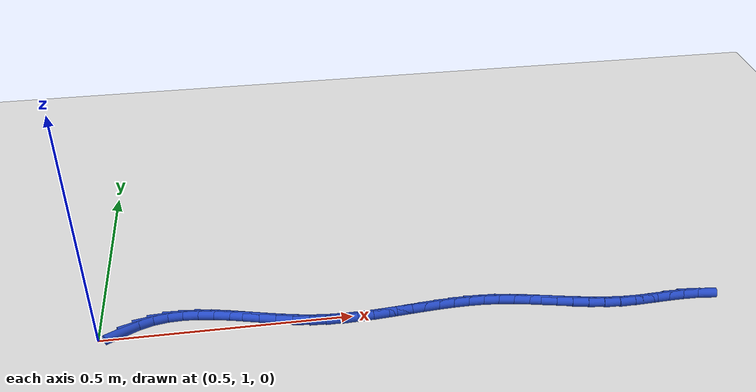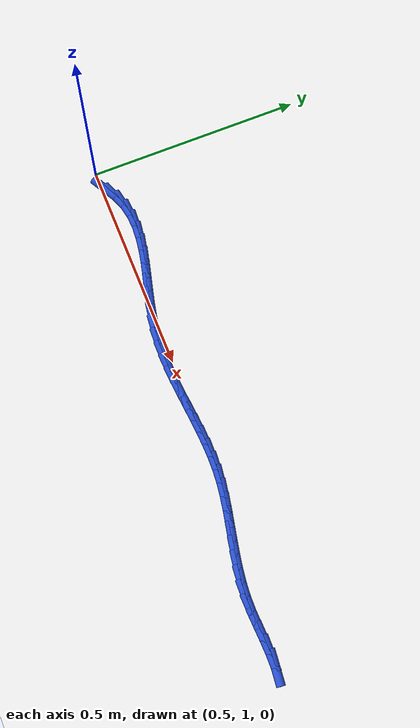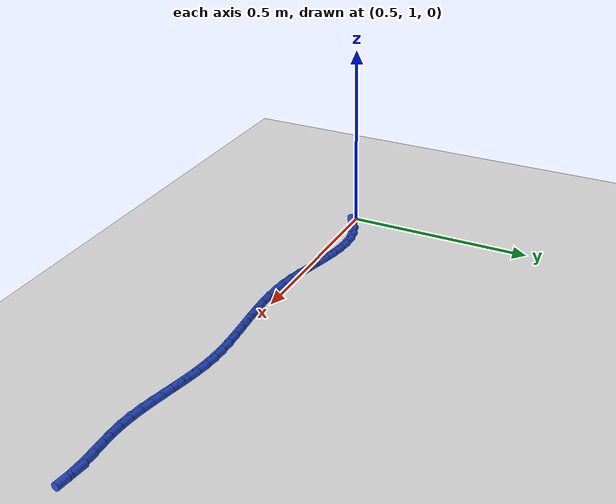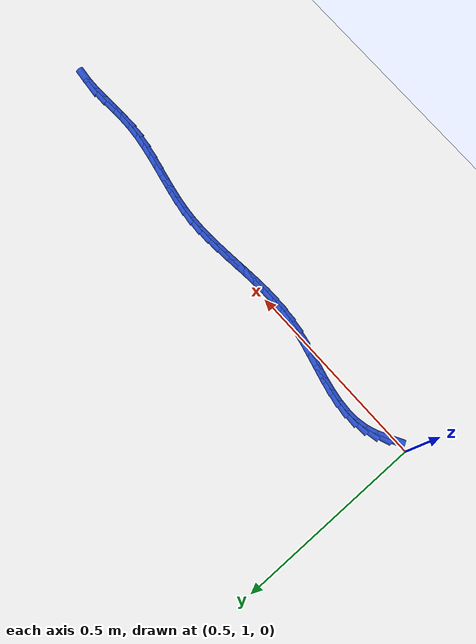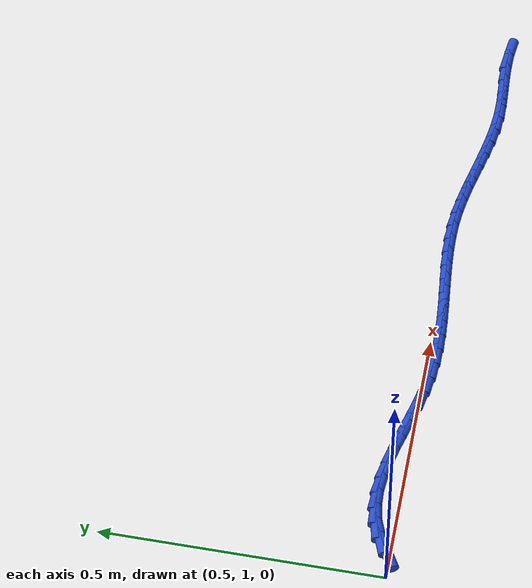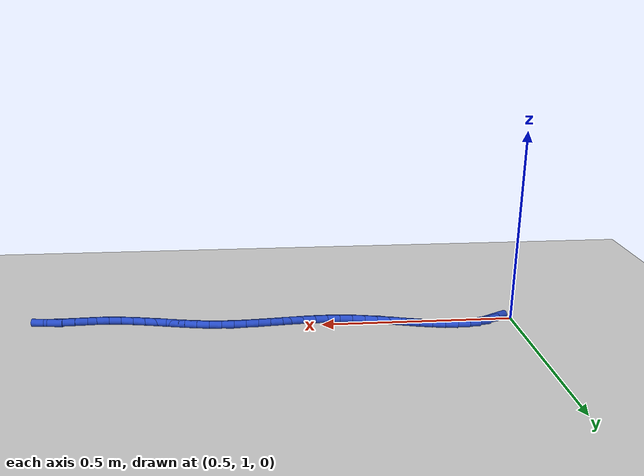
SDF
<sdf version="1.6">
 <world name="default">
  <model name="ground_plane">
   <static>1</static>
   <link name="link">
    <collision name="collision">
     <geometry><plane><normal>0 0 1</normal><size>100 100</size></plane></geometry>
     <surface><friction><ode><mu>100</mu><mu2>50</mu2></ode></friction></surface>
    </collision>
    <visual name="visual">
     <cast_shadows>0</cast_shadows>
     <geometry><plane><normal>0 0 1</normal><size>100 100</size></plane></geometry>
     <material>
      <script><uri>file://media/materials/scripts/gazebo.material</uri><name>Gazebo/WhiteGlow</name></script>
     </material>
    </visual>
   </link>
  </model>
  <model name="line">
   <link name="link_37">
    <pose>0.5494593843570381 1.0087941891152745 0.01 0 1.57 0.5000352109031894</pose>
    <collision name="collision">
     <geometry><cylinder><radius>0.01</radius><length>0.08</length></cylinder></geometry>
    </collision>
    <visual name="visual">
     <material>
      <script><name>Gazebo/Blue</name><uri>file://media/materials/scripts/gazebo.material</uri></script>
     </material>
     <geometry><cylinder><radius>0.01</radius><length>0.08</length></cylinder></geometry>
    </visual>
   </link>
   <link name="link_38">
    <pose>0.5763257783304249 1.0234725953770047 0.01 0 1.57 0.35312439117154304</pose>
    <collision name="collision">
     <geometry><cylinder><radius>0.01</radius><length>0.08</length></cylinder></geometry>
    </collision>
    <visual name="visual">
     <material>
      <script><name>Gazebo/Blue</name><uri>file://media/materials/scripts/gazebo.material</uri></script>
     </material>
     <geometry><cylinder><radius>0.01</radius><length>0.08</length></cylinder></geometry>
    </visual>
   </link>
   <link name="link_39">
    <pose>0.6042350538172319 1.0337592078128153 0.01 0 1.57 0.18876865755380007</pose>
    <collision name="collision">
     <geometry><cylinder><radius>0.01</radius><length>0.08</length></cylinder></geometry>
    </collision>
    <visual name="visual">
     <material>
      <script><name>Gazebo/Blue</name><uri>file://media/materials/scripts/gazebo.material</uri></script>
     </material>
     <geometry><cylinder><radius>0.01</radius><length>0.08</length></cylinder></geometry>
    </visual>
   </link>
   <link name="link_40">
    <pose>0.633154343229614 1.0392840429426653 0.01 0 1.57 0.04550295876543548</pose>
    <collision name="collision">
     <geometry><cylinder><radius>0.01</radius><length>0.08</length></cylinder></geometry>
    </collision>
    <visual name="visual">
     <material>
      <script><name>Gazebo/Blue</name><uri>file://media/materials/scripts/gazebo.material</uri></script>
     </material>
     <geometry><cylinder><radius>0.01</radius><length>0.08</length></cylinder></geometry>
    </visual>
   </link>
   <link name="link_41">
    <pose>0.6629722235899185 1.0406417819274516 0.01 0 1.57 -0.06756325267002852</pose>
    <collision name="collision">
     <geometry><cylinder><radius>0.01</radius><length>0.08</length></cylinder></geometry>
    </collision>
    <visual name="visual">
     <material>
      <script><name>Gazebo/Blue</name><uri>file://media/materials/scripts/gazebo.material</uri></script>
     </material>
     <geometry><cylinder><radius>0.01</radius><length>0.08</length></cylinder></geometry>
    </visual>
   </link>
   <link name="link_42">
    <pose>0.6935655013087647 1.0385716497075008 0.01 0 1.57 -0.1511414407113176</pose>
    <collision name="collision">
     <geometry><cylinder><radius>0.01</radius><length>0.08</length></cylinder></geometry>
    </collision>
    <visual name="visual">
     <material>
      <script><name>Gazebo/Blue</name><uri>file://media/materials/scripts/gazebo.material</uri></script>
     </material>
     <geometry><cylinder><radius>0.01</radius><length>0.08</length></cylinder></geometry>
    </visual>
   </link>
   <link name="link_43">
    <pose>0.7248109827967707 1.0338128712231396 0.01 0 1.57 -0.20806371625510015</pose>
    <collision name="collision">
     <geometry><cylinder><radius>0.01</radius><length>0.08</length></cylinder></geometry>
    </collision>
    <visual name="visual">
     <material>
      <script><name>Gazebo/Blue</name><uri>file://media/materials/scripts/gazebo.material</uri></script>
     </material>
     <geometry><cylinder><radius>0.01</radius><length>0.08</length></cylinder></geometry>
    </visual>
   </link>
   <link name="link_44">
    <pose>0.7565854744645548 1.0271046714146934 0.01 0 1.57 -0.2412702136139695</pose>
    <collision name="collision">
     <geometry><cylinder><radius>0.01</radius><length>0.08</length></cylinder></geometry>
    </collision>
    <visual name="visual">
     <material>
      <script><name>Gazebo/Blue</name><uri>file://media/materials/scripts/gazebo.material</uri></script>
     </material>
     <geometry><cylinder><radius>0.01</radius><length>0.08</length></cylinder></geometry>
    </visual>
   </link>
   <link name="link_45">
    <pose>0.7887657827227358 1.0191862752224894 0.01 0 1.57 -0.2528961093170439</pose>
    <collision name="collision">
     <geometry><cylinder><radius>0.01</radius><length>0.08</length></cylinder></geometry>
    </collision>
    <visual name="visual">
     <material>
      <script><name>Gazebo/Blue</name><uri>file://media/materials/scripts/gazebo.material</uri></script>
     </material>
     <geometry><cylinder><radius>0.01</radius><length>0.08</length></cylinder></geometry>
    </visual>
   </link>
   <link name="link_46">
    <pose>0.8212287139819319 1.0107969075868535 0.01 0 1.57 -0.24398376004355413</pose>
    <collision name="collision">
     <geometry><cylinder><radius>0.01</radius><length>0.08</length></cylinder></geometry>
    </collision>
    <visual name="visual">
     <material>
      <script><name>Gazebo/Blue</name><uri>file://media/materials/scripts/gazebo.material</uri></script>
     </material>
     <geometry><cylinder><radius>0.01</radius><length>0.08</length></cylinder></geometry>
    </visual>
   </link>
   <link name="link_47">
    <pose>0.8538510746527614 1.0026757934481116 0.01 0 1.57 -0.2144682495640532</pose>
    <collision name="collision">
     <geometry><cylinder><radius>0.01</radius><length>0.08</length></cylinder></geometry>
    </collision>
    <visual name="visual">
     <material>
      <script><name>Gazebo/Blue</name><uri>file://media/materials/scripts/gazebo.material</uri></script>
     </material>
     <geometry><cylinder><radius>0.01</radius><length>0.08</length></cylinder></geometry>
    </visual>
   </link>
   <link name="link_48">
    <pose>0.8865096711458433 0.9955621577465913 0.01 0 1.57 -0.16332632293559765</pose>
    <collision name="collision">
     <geometry><cylinder><radius>0.01</radius><length>0.08</length></cylinder></geometry>
    </collision>
    <visual name="visual">
     <material>
      <script><name>Gazebo/Blue</name><uri>file://media/materials/scripts/gazebo.material</uri></script>
     </material>
     <geometry><cylinder><radius>0.01</radius><length>0.08</length></cylinder></geometry>
    </visual>
   </link>
   <link name="link_49">
    <pose>0.9190813948219791 0.9901945247162948 0.01 0 1.57 -0.0974655832915246</pose>
    <collision name="collision">
     <geometry><cylinder><radius>0.01</radius><length>0.08</length></cylinder></geometry>
    </collision>
    <visual name="visual">
     <material>
      <script><name>Gazebo/Blue</name><uri>file://media/materials/scripts/gazebo.material</uri></script>
     </material>
     <geometry><cylinder><radius>0.01</radius><length>0.08</length></cylinder></geometry>
    </visual>
   </link>
   <link name="link_50">
    <pose>0.9514776220580944 0.9870269710736745 0.01 0 1.57 -0.03825388709595281</pose>
    <collision name="collision">
     <geometry><cylinder><radius>0.01</radius><length>0.08</length></cylinder></geometry>
    </collision>
    <visual name="visual">
     <material>
      <script><name>Gazebo/Blue</name><uri>file://media/materials/scripts/gazebo.material</uri></script>
     </material>
     <geometry><cylinder><radius>0.01</radius><length>0.08</length></cylinder></geometry>
    </visual>
   </link>
   <link name="link_51">
    <pose>0.9836969845238246 0.9857938536627369 0.01 0 1.57 0.010094144254766724</pose>
    <collision name="collision">
     <geometry><cylinder><radius>0.01</radius><length>0.08</length></cylinder></geometry>
    </collision>
    <visual name="visual">
     <material>
      <script><name>Gazebo/Blue</name><uri>file://media/materials/scripts/gazebo.material</uri></script>
     </material>
     <geometry><cylinder><radius>0.01</radius><length>0.08</length></cylinder></geometry>
    </visual>
   </link>
   <link name="link_52">
    <pose>1.015751704305465 0.9861174296182401 0.01 0 1.57 0.0470629705185265</pose>
    <collision name="collision">
     <geometry><cylinder><radius>0.01</radius><length>0.08</length></cylinder></geometry>
    </collision>
    <visual name="visual">
     <material>
      <script><name>Gazebo/Blue</name><uri>file://media/materials/scripts/gazebo.material</uri></script>
     </material>
     <geometry><cylinder><radius>0.01</radius><length>0.08</length></cylinder></geometry>
    </visual>
   </link>
   <link name="link_53">
    <pose>1.0476540034893085 0.9876199560749416 0.01 0 1.57 0.0724041222366056</pose>
    <collision name="collision">
     <geometry><cylinder><radius>0.01</radius><length>0.08</length></cylinder></geometry>
    </collision>
    <visual name="visual">
     <material>
      <script><name>Gazebo/Blue</name><uri>file://media/materials/scripts/gazebo.material</uri></script>
     </material>
     <geometry><cylinder><radius>0.01</radius><length>0.08</length></cylinder></geometry>
    </visual>
   </link>
   <link name="link_54">
    <pose>1.0794161041616501 0.9899236901675994 0.01 0 1.57 0.08599803106822794</pose>
    <collision name="collision">
     <geometry><cylinder><radius>0.01</radius><length>0.08</length></cylinder></geometry>
    </collision>
    <visual name="visual">
     <material>
      <script><name>Gazebo/Blue</name><uri>file://media/materials/scripts/gazebo.material</uri></script>
     </material>
     <geometry><cylinder><radius>0.01</radius><length>0.08</length></cylinder></geometry>
    </visual>
   </link>
   <link name="link_55">
    <pose>1.1110502284087842 0.9926508890309718 0.01 0 1.57 0.08775198644588765</pose>
    <collision name="collision">
     <geometry><cylinder><radius>0.01</radius><length>0.08</length></cylinder></geometry>
    </collision>
    <visual name="visual">
     <material>
      <script><name>Gazebo/Blue</name><uri>file://media/materials/scripts/gazebo.material</uri></script>
     </material>
     <geometry><cylinder><radius>0.01</radius><length>0.08</length></cylinder></geometry>
    </visual>
   </link>
   <link name="link_56">
    <pose>1.142568598317004 0.9954238097998159 0.01 0 1.57 0.07754315158908005</pose>
    <collision name="collision">
     <geometry><cylinder><radius>0.01</radius><length>0.08</length></cylinder></geometry>
    </collision>
    <visual name="visual">
     <material>
      <script><name>Gazebo/Blue</name><uri>file://media/materials/scripts/gazebo.material</uri></script>
     </material>
     <geometry><cylinder><radius>0.01</radius><length>0.08</length></cylinder></geometry>
    </visual>
   </link>
   <link name="link_57">
    <pose>1.1739834359726047 0.9978647096088904 0.01 0 1.57 0.05521015154342319</pose>
    <collision name="collision">
     <geometry><cylinder><radius>0.01</radius><length>0.08</length></cylinder></geometry>
    </collision>
    <visual name="visual">
     <material>
      <script><name>Gazebo/Blue</name><uri>file://media/materials/scripts/gazebo.material</uri></script>
     </material>
     <geometry><cylinder><radius>0.01</radius><length>0.08</length></cylinder></geometry>
    </visual>
   </link>
   <link name="link_58">
    <pose>1.2053069634618794 0.9995958455929524 0.01 0 1.57 0.020596889794850914</pose>
    <collision name="collision">
     <geometry><cylinder><radius>0.01</radius><length>0.08</length></cylinder></geometry>
    </collision>
    <visual name="visual">
     <material>
      <script><name>Gazebo/Blue</name><uri>file://media/materials/scripts/gazebo.material</uri></script>
     </material>
     <geometry><cylinder><radius>0.01</radius><length>0.08</length></cylinder></geometry>
    </visual>
   </link>
   <link name="link_59">
    <pose>1.2365514028711233 1.0002394748867602 0.01 0 1.57 -0.02634682729325498</pose>
    <collision name="collision">
     <geometry><cylinder><radius>0.01</radius><length>0.08</length></cylinder></geometry>
    </collision>
    <visual name="visual">
     <material>
      <script><name>Gazebo/Blue</name><uri>file://media/materials/scripts/gazebo.material</uri></script>
     </material>
     <geometry><cylinder><radius>0.01</radius><length>0.08</length></cylinder></geometry>
    </visual>
   </link>
   <link name="link_60">
    <pose>1.2677289762866302 0.999417854625072 0.01 0 1.57 -0.0848402004805474</pose>
    <collision name="collision">
     <geometry><cylinder><radius>0.01</radius><length>0.08</length></cylinder></geometry>
    </collision>
    <visual name="visual">
     <material>
      <script><name>Gazebo/Blue</name><uri>file://media/materials/scripts/gazebo.material</uri></script>
     </material>
     <geometry><cylinder><radius>0.01</radius><length>0.08</length></cylinder></geometry>
    </visual>
   </link>
   <link name="link_61">
    <pose>1.2988522224955503 0.9967709985615213 0.01 0 1.57 -0.14102467265274782</pose>
    <collision name="collision">
     <geometry><cylinder><radius>0.01</radius><length>0.08</length></cylinder></geometry>
    </collision>
    <visual name="visual">
     <material>
      <script><name>Gazebo/Blue</name><uri>file://media/materials/scripts/gazebo.material</uri></script>
     </material>
     <geometry><cylinder><radius>0.01</radius><length>0.08</length></cylinder></geometry>
    </visual>
   </link>
   <link name="link_62">
    <pose>1.329941144060369 0.9923573955230051 0.01 0 1.57 -0.18129847067194396</pose>
    <collision name="collision">
     <geometry><cylinder><radius>0.01</radius><length>0.08</length></cylinder></geometry>
    </collision>
    <visual name="visual">
     <material>
      <script><name>Gazebo/Blue</name><uri>file://media/materials/scripts/gazebo.material</uri></script>
     </material>
     <geometry><cylinder><radius>0.01</radius><length>0.08</length></cylinder></geometry>
    </visual>
   </link>
   <link name="link_63">
    <pose>1.3610233085133334 0.9866596831261163 0.01 0 1.57 -0.2054088264379113</pose>
    <collision name="collision">
     <geometry><cylinder><radius>0.01</radius><length>0.08</length></cylinder></geometry>
    </collision>
    <visual name="visual">
     <material>
      <script><name>Gazebo/Blue</name><uri>file://media/materials/scripts/gazebo.material</uri></script>
     </material>
     <geometry><cylinder><radius>0.01</radius><length>0.08</length></cylinder></geometry>
    </visual>
   </link>
   <link name="link_64">
    <pose>1.3921266203275802 0.9801793904141248 0.01 0 1.57 -0.21372628012579523</pose>
    <collision name="collision">
     <geometry><cylinder><radius>0.01</radius><length>0.08</length></cylinder></geometry>
    </collision>
    <visual name="visual">
     <material>
      <script><name>Gazebo/Blue</name><uri>file://media/materials/scripts/gazebo.material</uri></script>
     </material>
     <geometry><cylinder><radius>0.01</radius><length>0.08</length></cylinder></geometry>
    </visual>
   </link>
   <link name="link_65">
    <pose>1.423278983976248 0.9734180464303004 0.01 0 1.57 -0.20646184336720474</pose>
    <collision name="collision">
     <geometry><cylinder><radius>0.01</radius><length>0.08</length></cylinder></geometry>
    </collision>
    <visual name="visual">
     <material>
      <script><name>Gazebo/Blue</name><uri>file://media/materials/scripts/gazebo.material</uri></script>
     </material>
     <geometry><cylinder><radius>0.01</radius><length>0.08</length></cylinder></geometry>
    </visual>
   </link>
   <link name="link_66">
    <pose>1.4545083039324764 0.9668771802179132 0.01 0 1.57 -0.1836116644949007</pose>
    <collision name="collision">
     <geometry><cylinder><radius>0.01</radius><length>0.08</length></cylinder></geometry>
    </collision>
    <visual name="visual">
     <material>
      <script><name>Gazebo/Blue</name><uri>file://media/materials/scripts/gazebo.material</uri></script>
     </material>
     <geometry><cylinder><radius>0.01</radius><length>0.08</length></cylinder></geometry>
    </visual>
   </link>
   <link name="link_67">
    <pose>1.485842484669402 0.9610583208202332 0.01 0 1.57 -0.14501145572093538</pose>
    <collision name="collision">
     <geometry><cylinder><radius>0.01</radius><length>0.08</length></cylinder></geometry>
    </collision>
    <visual name="visual">
     <material>
      <script><name>Gazebo/Blue</name><uri>file://media/materials/scripts/gazebo.material</uri></script>
     </material>
     <geometry><cylinder><radius>0.01</radius><length>0.08</length></cylinder></geometry>
    </visual>
   </link>
   <link name="link_68">
    <pose>1.5173094306601644 0.9564629972805305 0.01 0 1.57 -0.0905037448146181</pose>
    <collision name="collision">
     <geometry><cylinder><radius>0.01</radius><length>0.08</length></cylinder></geometry>
    </collision>
    <visual name="visual">
     <material>
      <script><name>Gazebo/Blue</name><uri>file://media/materials/scripts/gazebo.material</uri></script>
     </material>
     <geometry><cylinder><radius>0.01</radius><length>0.08</length></cylinder></geometry>
    </visual>
   </link>
   <link name="link_69">
    <pose>1.5489370463779009 0.9535927386420745 0.01 0 1.57 -0.023188830017155403</pose>
    <collision name="collision">
     <geometry><cylinder><radius>0.01</radius><length>0.08</length></cylinder></geometry>
    </collision>
    <visual name="visual">
     <material>
      <script><name>Gazebo/Blue</name><uri>file://media/materials/scripts/gazebo.material</uri></script>
     </material>
     <geometry><cylinder><radius>0.01</radius><length>0.08</length></cylinder></geometry>
    </visual>
   </link>
   <link name="link_70">
    <pose>1.5807444389985381 0.9528550301892503 0.01 0 1.57 0.027182631395976594</pose>
    <collision name="collision">
     <geometry><cylinder><radius>0.01</radius><length>0.08</length></cylinder></geometry>
    </collision>
    <visual name="visual">
     <material>
      <script><name>Gazebo/Blue</name><uri>file://media/materials/scripts/gazebo.material</uri></script>
     </material>
     <geometry><cylinder><radius>0.01</radius><length>0.08</length></cylinder></geometry>
    </visual>
   </link>
   <link name="link_71">
    <pose>1.612663300531228 0.9537228825981346 0.01 0 1.57 0.04419482162252456</pose>
    <collision name="collision">
     <geometry><cylinder><radius>0.01</radius><length>0.08</length></cylinder></geometry>
    </collision>
    <visual name="visual">
     <material>
      <script><name>Gazebo/Blue</name><uri>file://media/materials/scripts/gazebo.material</uri></script>
     </material>
     <geometry><cylinder><radius>0.01</radius><length>0.08</length></cylinder></geometry>
    </visual>
   </link>
   <link name="link_72">
    <pose>1.6445752614434126 0.9551341449554698 0.01 0 1.57 0.027873031226642954</pose>
    <collision name="collision">
     <geometry><cylinder><radius>0.01</radius><length>0.08</length></cylinder></geometry>
    </collision>
    <visual name="visual">
     <material>
      <script><name>Gazebo/Blue</name><uri>file://media/materials/scripts/gazebo.material</uri></script>
     </material>
     <geometry><cylinder><radius>0.01</radius><length>0.08</length></cylinder></geometry>
    </visual>
   </link>
   <link name="link_73">
    <pose>1.6763613612872674 0.9560203494200283 0.01 0 1.57 -0.02242149887177784</pose>
    <collision name="collision">
     <geometry><cylinder><radius>0.01</radius><length>0.08</length></cylinder></geometry>
    </collision>
    <visual name="visual">
     <material>
      <script><name>Gazebo/Blue</name><uri>file://media/materials/scripts/gazebo.material</uri></script>
     </material>
     <geometry><cylinder><radius>0.01</radius><length>0.08</length></cylinder></geometry>
    </visual>
   </link>
   <link name="link_74">
    <pose>1.7079026396149688 0.9553130281505823 0.01 0 1.57 -0.10765102381634747</pose>
    <collision name="collision">
     <geometry><cylinder><radius>0.01</radius><length>0.08</length></cylinder></geometry>
    </collision>
    <visual name="visual">
     <material>
      <script><name>Gazebo/Blue</name><uri>file://media/materials/scripts/gazebo.material</uri></script>
     </material>
     <geometry><cylinder><radius>0.01</radius><length>0.08</length></cylinder></geometry>
    </visual>
   </link>
  </model>
 </world>
</sdf>
